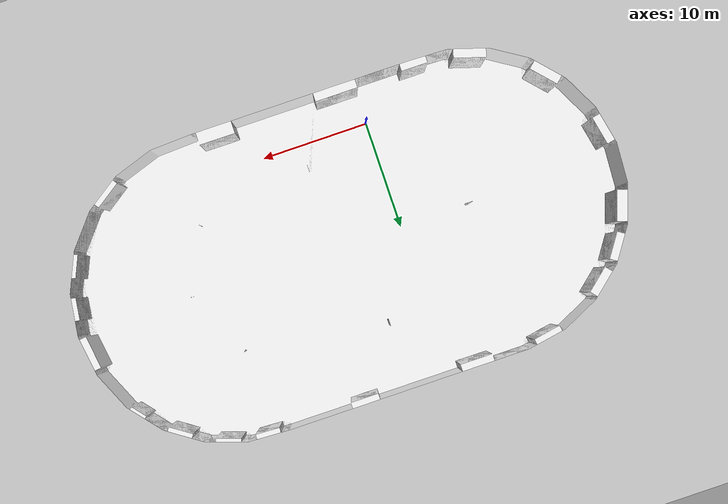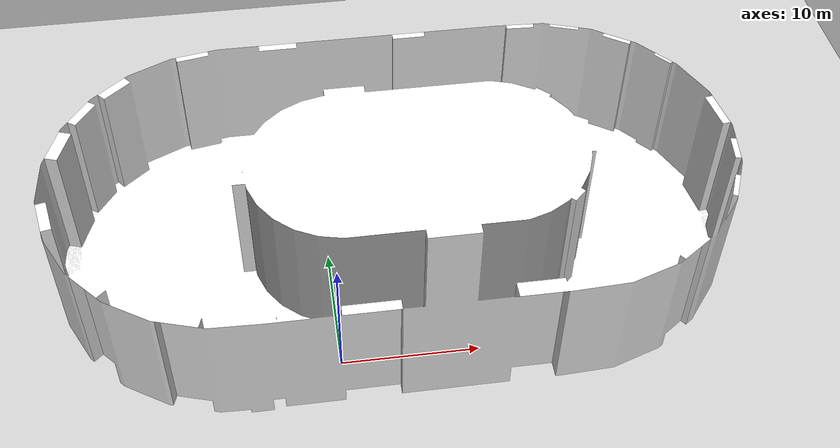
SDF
<?xml version="1.0"?>
<sdf version="1.4">
  <world name="default">
    <include>
      <uri>model://ground_plane</uri>
    </include>
    <include>
      <uri>model://sun</uri>
    </include>

    <model name="all_build">
      <pose>0 0 0  0 0 0</pose>
      <static>true</static>
      <link name="body">
        <collision name="environment_model_collision">
           <geometry>
             <mesh><uri>model://circle_coridor_loop_lit_cut_052_with_floor_color.dae</uri></mesh>
           </geometry>
        </collision>
        <visual name="visual">
          <geometry>
            <mesh><uri>model://circle_coridor_loop_lit_cut_052_with_floor_color.dae</uri></mesh>
          </geometry>
        </visual>
      </link>
    </model>

  </world>
</sdf>
